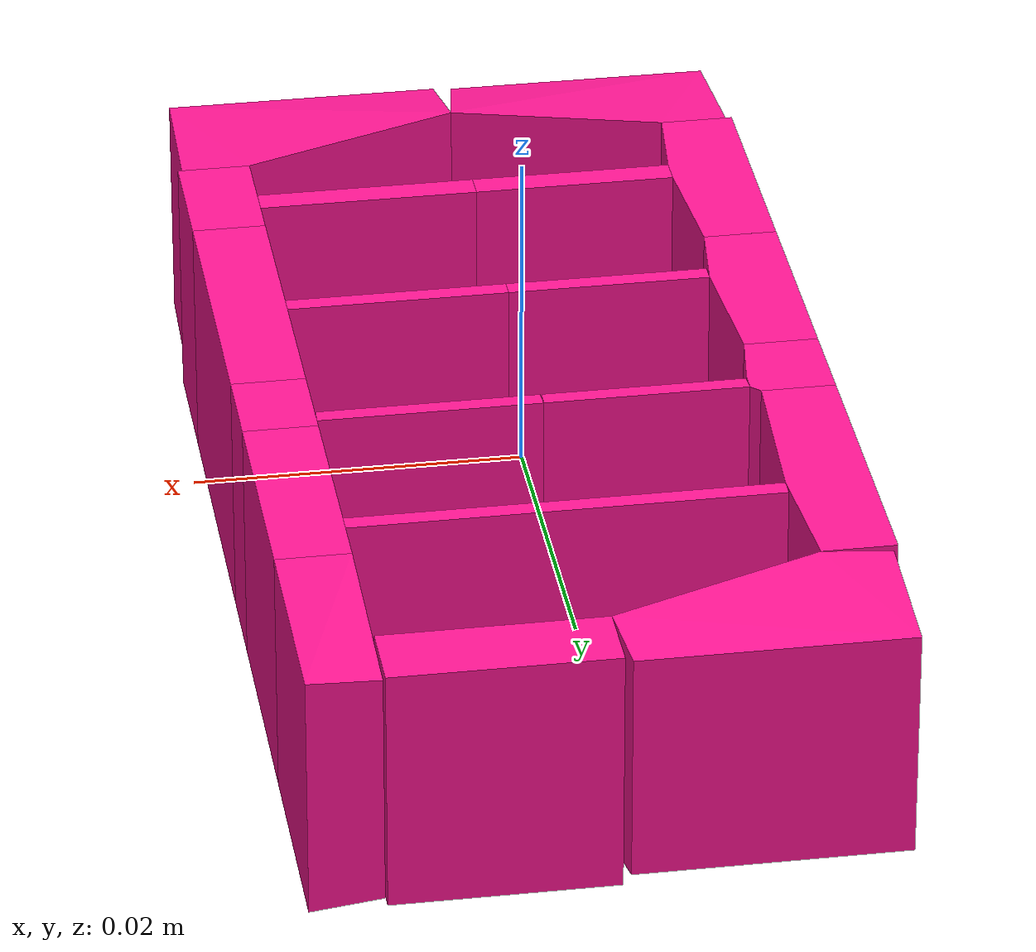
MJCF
<mujoco model="shapenet4-6">
  <asset>
    <mesh file="meshes/shapenet4-6/shapenet4-6_0.stl" name="shapenet4-6_0" scale="0.08 0.08 0.08"/>
    <mesh file="meshes/shapenet4-6/shapenet4-6_1.stl" name="shapenet4-6_1" scale="0.08 0.08 0.08"/>
    <mesh file="meshes/shapenet4-6/shapenet4-6_2.stl" name="shapenet4-6_2" scale="0.08 0.08 0.08"/>
    <mesh file="meshes/shapenet4-6/shapenet4-6_3.stl" name="shapenet4-6_3" scale="0.08 0.08 0.08"/>
    <mesh file="meshes/shapenet4-6/shapenet4-6_4.stl" name="shapenet4-6_4" scale="0.08 0.08 0.08"/>
    <mesh file="meshes/shapenet4-6/shapenet4-6_5.stl" name="shapenet4-6_5" scale="0.08 0.08 0.08"/>
    <mesh file="meshes/shapenet4-6/shapenet4-6_6.stl" name="shapenet4-6_6" scale="0.08 0.08 0.08"/>
    <mesh file="meshes/shapenet4-6/shapenet4-6_7.stl" name="shapenet4-6_7" scale="0.08 0.08 0.08"/>
    <mesh file="meshes/shapenet4-6/shapenet4-6_8.stl" name="shapenet4-6_8" scale="0.08 0.08 0.08"/>
    <mesh file="meshes/shapenet4-6/shapenet4-6_9.stl" name="shapenet4-6_9" scale="0.08 0.08 0.08"/>
    <mesh file="meshes/shapenet4-6/shapenet4-6_10.stl" name="shapenet4-6_10" scale="0.08 0.08 0.08"/>
    <mesh file="meshes/shapenet4-6/shapenet4-6_11.stl" name="shapenet4-6_11" scale="0.08 0.08 0.08"/>
    <mesh file="meshes/shapenet4-6/shapenet4-6_12.stl" name="shapenet4-6_12" scale="0.08 0.08 0.08"/>
    <mesh file="meshes/shapenet4-6/shapenet4-6_13.stl" name="shapenet4-6_13" scale="0.08 0.08 0.08"/>
    <mesh file="meshes/shapenet4-6/shapenet4-6_14.stl" name="shapenet4-6_14" scale="0.08 0.08 0.08"/>
    <mesh file="meshes/shapenet4-6/shapenet4-6_15.stl" name="shapenet4-6_15" scale="0.08 0.08 0.08"/>
    <mesh file="meshes/shapenet4-6/shapenet4-6_16.stl" name="shapenet4-6_16" scale="0.08 0.08 0.08"/>
    <mesh file="meshes/shapenet4-6/shapenet4-6_17.stl" name="shapenet4-6_17" scale="0.08 0.08 0.08"/>
    <mesh file="meshes/shapenet4-6/shapenet4-6_18.stl" name="shapenet4-6_18" scale="0.08 0.08 0.08"/>
    <mesh file="meshes/shapenet4-6/shapenet4-6_19.stl" name="shapenet4-6_19" scale="0.08 0.08 0.08"/>
    <texture file="../textures/dark-wood.png" name="tex-darkwood" />
    <material name="darkwood" reflectance="0.7" texrepeat="15 15" texture="tex-darkwood" texuniform="true"/>
  </asset>
  <worldbody>
    <body>
      <body name="collision">
        <geom pos="0 0 0" mesh="shapenet4-6_0" type="mesh" solimp="0.998 0.998 0.001" solref="0.001 1" density="100" friction="0.95 0.3 0.1" rgba="1 0.08 0.58 1" group="1" condim="4"/>
        <geom pos="0 0 0" mesh="shapenet4-6_1" type="mesh" solimp="0.998 0.998 0.001" solref="0.001 1" density="100" friction="0.95 0.3 0.1" rgba="1 0.08 0.58 1" group="1" condim="4"/>
        <geom pos="0 0 0" mesh="shapenet4-6_2" type="mesh" solimp="0.998 0.998 0.001" solref="0.001 1" density="100" friction="0.95 0.3 0.1" rgba="1 0.08 0.58 1" group="1" condim="4"/>
        <geom pos="0 0 0" mesh="shapenet4-6_3" type="mesh" solimp="0.998 0.998 0.001" solref="0.001 1" density="100" friction="0.95 0.3 0.1" rgba="1 0.08 0.58 1" group="1" condim="4"/>
        <geom pos="0 0 0" mesh="shapenet4-6_4" type="mesh" solimp="0.998 0.998 0.001" solref="0.001 1" density="100" friction="0.95 0.3 0.1" rgba="1 0.08 0.58 1" group="1" condim="4"/>
        <geom pos="0 0 0" mesh="shapenet4-6_5" type="mesh" solimp="0.998 0.998 0.001" solref="0.001 1" density="100" friction="0.95 0.3 0.1" rgba="1 0.08 0.58 1" group="1" condim="4"/>
        <geom pos="0 0 0" mesh="shapenet4-6_6" type="mesh" solimp="0.998 0.998 0.001" solref="0.001 1" density="100" friction="0.95 0.3 0.1" rgba="1 0.08 0.58 1" group="1" condim="4"/>
        <geom pos="0 0 0" mesh="shapenet4-6_7" type="mesh" solimp="0.998 0.998 0.001" solref="0.001 1" density="100" friction="0.95 0.3 0.1" rgba="1 0.08 0.58 1" group="1" condim="4"/>
        <geom pos="0 0 0" mesh="shapenet4-6_8" type="mesh" solimp="0.998 0.998 0.001" solref="0.001 1" density="100" friction="0.95 0.3 0.1" rgba="1 0.08 0.58 1" group="1" condim="4"/>
        <geom pos="0 0 0" mesh="shapenet4-6_9" type="mesh" solimp="0.998 0.998 0.001" solref="0.001 1" density="100" friction="0.95 0.3 0.1" rgba="1 0.08 0.58 1" group="1" condim="4"/>
        <geom pos="0 0 0" mesh="shapenet4-6_10" type="mesh" solimp="0.998 0.998 0.001" solref="0.001 1" density="100" friction="0.95 0.3 0.1" rgba="1 0.08 0.58 1" group="1" condim="4"/>
        <geom pos="0 0 0" mesh="shapenet4-6_11" type="mesh" solimp="0.998 0.998 0.001" solref="0.001 1" density="100" friction="0.95 0.3 0.1" rgba="1 0.08 0.58 1" group="1" condim="4"/>
        <geom pos="0 0 0" mesh="shapenet4-6_12" type="mesh" solimp="0.998 0.998 0.001" solref="0.001 1" density="100" friction="0.95 0.3 0.1" rgba="1 0.08 0.58 1" group="1" condim="4"/>
        <geom pos="0 0 0" mesh="shapenet4-6_13" type="mesh" solimp="0.998 0.998 0.001" solref="0.001 1" density="100" friction="0.95 0.3 0.1" rgba="1 0.08 0.58 1" group="1" condim="4"/>
        <geom pos="0 0 0" mesh="shapenet4-6_14" type="mesh" solimp="0.998 0.998 0.001" solref="0.001 1" density="100" friction="0.95 0.3 0.1" rgba="1 0.08 0.58 1" group="1" condim="4"/>
        <geom pos="0 0 0" mesh="shapenet4-6_15" type="mesh" solimp="0.998 0.998 0.001" solref="0.001 1" density="100" friction="0.95 0.3 0.1" rgba="1 0.08 0.58 1" group="1" condim="4"/>
        <geom pos="0 0 0" mesh="shapenet4-6_16" type="mesh" solimp="0.998 0.998 0.001" solref="0.001 1" density="100" friction="0.95 0.3 0.1" rgba="1 0.08 0.58 1" group="1" condim="4"/>
        <geom pos="0 0 0" mesh="shapenet4-6_17" type="mesh" solimp="0.998 0.998 0.001" solref="0.001 1" density="100" friction="0.95 0.3 0.1" rgba="1 0.08 0.58 1" group="1" condim="4"/>
        <geom pos="0 0 0" mesh="shapenet4-6_18" type="mesh" solimp="0.998 0.998 0.001" solref="0.001 1" density="100" friction="0.95 0.3 0.1" rgba="1 0.08 0.58 1" group="1" condim="4"/>
        <geom pos="0 0 0" mesh="shapenet4-6_19" type="mesh" solimp="0.998 0.998 0.001" solref="0.001 1" density="100" friction="0.95 0.3 0.1" rgba="1 0.08 0.58 1" group="1" condim="4"/>
      </body>
      <body name="visual">
        <geom pos="0 0 0" mesh="shapenet4-6_0" type="mesh" material="darkwood" conaffinity="0" contype="0" group="0" mass="0.0001"/>
        <geom pos="0 0 0" mesh="shapenet4-6_1" type="mesh" material="darkwood" conaffinity="0" contype="0" group="0" mass="0.0001"/>
        <geom pos="0 0 0" mesh="shapenet4-6_2" type="mesh" material="darkwood" conaffinity="0" contype="0" group="0" mass="0.0001"/>
        <geom pos="0 0 0" mesh="shapenet4-6_3" type="mesh" material="darkwood" conaffinity="0" contype="0" group="0" mass="0.0001"/>
        <geom pos="0 0 0" mesh="shapenet4-6_4" type="mesh" material="darkwood" conaffinity="0" contype="0" group="0" mass="0.0001"/>
        <geom pos="0 0 0" mesh="shapenet4-6_5" type="mesh" material="darkwood" conaffinity="0" contype="0" group="0" mass="0.0001"/>
        <geom pos="0 0 0" mesh="shapenet4-6_6" type="mesh" material="darkwood" conaffinity="0" contype="0" group="0" mass="0.0001"/>
        <geom pos="0 0 0" mesh="shapenet4-6_7" type="mesh" material="darkwood" conaffinity="0" contype="0" group="0" mass="0.0001"/>
        <geom pos="0 0 0" mesh="shapenet4-6_8" type="mesh" material="darkwood" conaffinity="0" contype="0" group="0" mass="0.0001"/>
        <geom pos="0 0 0" mesh="shapenet4-6_9" type="mesh" material="darkwood" conaffinity="0" contype="0" group="0" mass="0.0001"/>
        <geom pos="0 0 0" mesh="shapenet4-6_10" type="mesh" material="darkwood" conaffinity="0" contype="0" group="0" mass="0.0001"/>
        <geom pos="0 0 0" mesh="shapenet4-6_11" type="mesh" material="darkwood" conaffinity="0" contype="0" group="0" mass="0.0001"/>
        <geom pos="0 0 0" mesh="shapenet4-6_12" type="mesh" material="darkwood" conaffinity="0" contype="0" group="0" mass="0.0001"/>
        <geom pos="0 0 0" mesh="shapenet4-6_13" type="mesh" material="darkwood" conaffinity="0" contype="0" group="0" mass="0.0001"/>
        <geom pos="0 0 0" mesh="shapenet4-6_14" type="mesh" material="darkwood" conaffinity="0" contype="0" group="0" mass="0.0001"/>
        <geom pos="0 0 0" mesh="shapenet4-6_15" type="mesh" material="darkwood" conaffinity="0" contype="0" group="0" mass="0.0001"/>
        <geom pos="0 0 0" mesh="shapenet4-6_16" type="mesh" material="darkwood" conaffinity="0" contype="0" group="0" mass="0.0001"/>
        <geom pos="0 0 0" mesh="shapenet4-6_17" type="mesh" material="darkwood" conaffinity="0" contype="0" group="0" mass="0.0001"/>
        <geom pos="0 0 0" mesh="shapenet4-6_18" type="mesh" material="darkwood" conaffinity="0" contype="0" group="0" mass="0.0001"/>
        <geom pos="0 0 0" mesh="shapenet4-6_19" type="mesh" material="darkwood" conaffinity="0" contype="0" group="0" mass="0.0001"/>
      </body>
      <site rgba="0 0 0 0" size="0.005" pos="0 0 -0.06" name="bottom_site"/>
      <site rgba="0 0 0 0" size="0.005" pos="0 0 0.04" name="top_site"/>
      <site rgba="0 0 0 0" size="0.005" pos="0.025 0.025 0" name="horizontal_radius_site"/>
    </body>
  </worldbody>
</mujoco>
